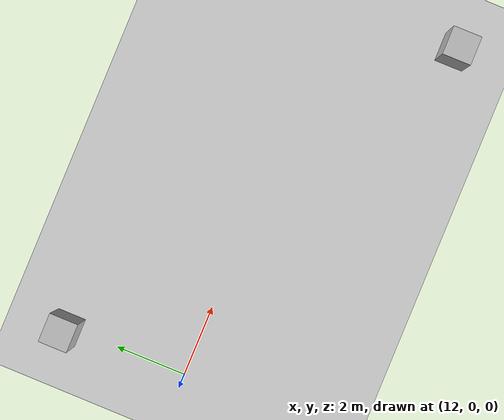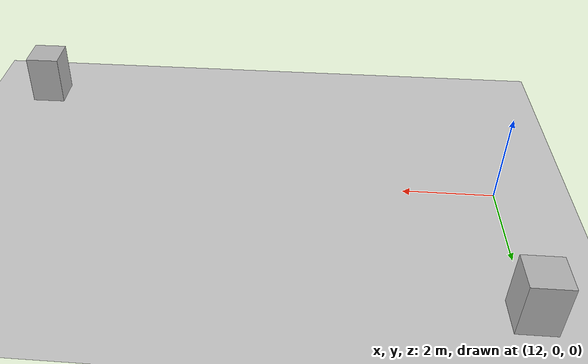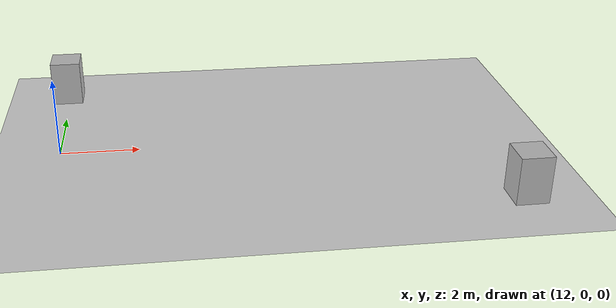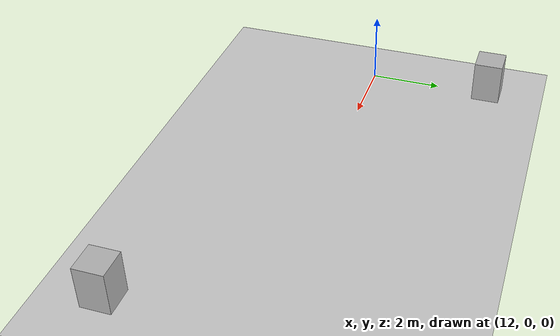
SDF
<?xml version="1.0"?>
<sdf version="1.6">
  <world name="v2-04c-r-cruise-s4501">
    <gravity>0 0 -9.81</gravity>
    <physics name="v2_deterministic" type="ode">
      <max_step_size>0.002</max_step_size>
      <real_time_update_rate>500</real_time_update_rate>
    </physics>
    <include>
      <uri>model://sun</uri>
    </include>
    <include>
      <uri>model://ground_plane</uri>
    </include>
    <model name="r-cruise-left">
      <static>true</static>
      <pose>11.957848089 3.486938936 0.600000000 0 0 0.000748910</pose>
      <link name="link">
        <collision name="collision">
          <geometry>
            <box>
              <size>0.800000 0.800000 1.200000</size>
            </box>
          </geometry>
        </collision>
        <visual name="visual">
          <geometry>
            <box>
              <size>0.800000 0.800000 1.200000</size>
            </box>
          </geometry>
        </visual>
      </link>
    </model>
    <model name="r-cruise-right">
      <static>true</static>
      <pose>22.995193486 -3.444006017 0.600000000 0 0 0.005594524</pose>
      <link name="link">
        <collision name="collision">
          <geometry>
            <box>
              <size>0.800000 0.800000 1.200000</size>
            </box>
          </geometry>
        </collision>
        <visual name="visual">
          <geometry>
            <box>
              <size>0.800000 0.800000 1.200000</size>
            </box>
          </geometry>
        </visual>
      </link>
    </model>
  </world>
</sdf>
